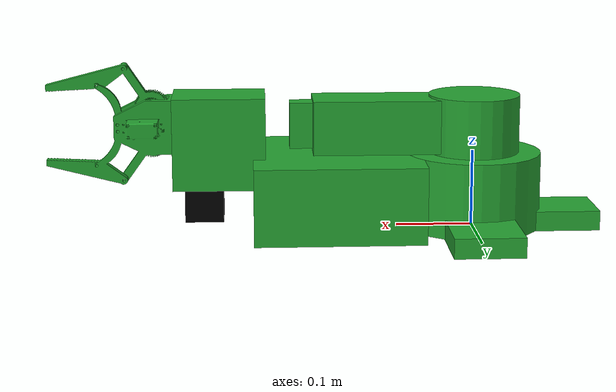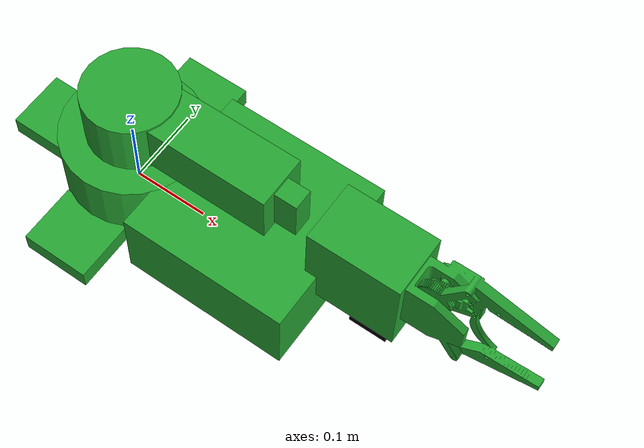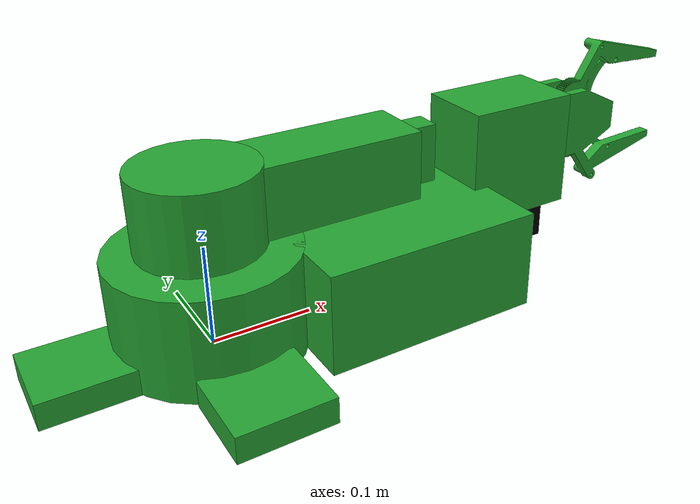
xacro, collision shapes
<?xml version="1.0"?>
<robot xmlns:xacro="http://www.ros.org/wiki/xacro" name="visiona">
    <xacro:arg name="initial_positions_file" default="initial_positions.yaml" />

    <!-- Import visiona urdf file -->
    <xacro:include filename="$(find visiona_bridge)/urdf/visiona.urdf.xacro" />

    <!-- Import control_xacro -->
    <xacro:include filename="visiona.ros2_control.xacro" />

    <xacro:visiona_ros2_control name="FakeSystem" initial_positions_file="$(arg initial_positions_file)"/>

</robot>

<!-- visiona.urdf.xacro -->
<robot xmlns:xacro="http://www.ros.org/wiki/xacro" name="visiona">
    <xacro:arg name="controller_config_path" default="" />
    <xacro:arg name="use_sim" default="true" />
    <xacro:include filename="./gripper.xacro" />
    <link name="world">
    </link>
    <link name="base">
        <inertial>
            <origin xyz="0.0 0.0 0.0" rpy="0.0 0.0 0.0" />
            <mass value="1.0" />
            <inertia ixx="0.01" ixy="0.0" ixz="0.0" iyy="0.01" iyz="0.0" izz="0.01" />
        </inertial>
        <visual name="base">
            <origin xyz="0 0 0 " rpy="0 0 0 " />
            <geometry>
                <mesh filename="file:///home/farouk/ros2_ws/src/visiona_bridge/meshes/base.stl" scale="0.001 0.001 0.001" />
            </geometry>
        </visual>

        <collision name="base_clyinder">
            <origin xyz="0 0 0.05 " rpy="0 0 0 " />
            <geometry>
                <cylinder length="0.1" radius="0.09" />
            </geometry>
        </collision>
        <collision name="logic_box">
            <origin xyz="0.18 0 0.05 " rpy="0 0 0 " />
            <geometry>
                <box size="0.22 0.21 0.1" />
            </geometry>
        </collision>
        <collision name="foot_1">
            <origin xyz="-0.12 0 0.012 " rpy="0 0 0 " />
            <geometry>
                <box size="0.09 0.08 0.026" />
            </geometry>
        </collision>
        <collision name="foot_2">
            <origin xyz="0 -0.12  0.012 " rpy="0 0 0 " />
            <geometry>
                <box size="0.09 0.08 0.026" />
            </geometry>
        </collision>
        <collision name="foot_3">
            <origin xyz="0 0.12  0.012 " rpy="0 0 0 " />
            <geometry>
                <box size="0.09 0.09 0.026" />
            </geometry>
        </collision>
    </link>
    <link name="base_link">
        <inertial>
            <origin xyz="0.0 0.0 0.0" rpy="0.0 0.0 0.0" />
            <mass value="1.0" />
            <inertia ixx="0.01" ixy="0.0" ixz="0.0" iyy="0.01" iyz="0.0" izz="0.01" />
        </inertial>
        <visual name="base_link">
            <origin xyz="0 0 0.075 " rpy="0 0 0 " />
            <geometry>
                <mesh filename="file:///home/farouk/ros2_ws/src/visiona_bridge/meshes/base_link.stl"
                    scale="0.001 0.001 0.001" />
            </geometry>
        </visual>

        <collision>
            <origin xyz="-0.005 0 0.14 " rpy="0 0 0 " />
            <geometry>
                <cylinder length="0.076" radius="0.06" />
            </geometry>
        </collision>
    </link>
    <link name="link_1_shoulder">
        <inertial>
            <origin xyz="0 0 0 " rpy="0.0 0.0 0.0" />
            <mass value="1.0" />
            <inertia ixx="0.01" ixy="0.0" ixz="0.0" iyy="0.01" iyz="0.0" izz="0.01" />
        </inertial>
        <visual name="link_1_shoulder">
            <origin xyz="0 0 0 " rpy="0 0 0 " />
            <geometry>
                <mesh filename="file:///home/farouk/ros2_ws/src/visiona_bridge/meshes/link_1_shoulder.stl"
                    scale="0.001 0.001 0.001" />
            </geometry>

        </visual>

        <collision>
            <origin xyz="-0.002 0 0.13" rpy="0 0 0 " />
            <geometry>
                <box size="0.07 0.07 0.165" />
            </geometry>
        </collision>
    </link>
    <link name="link_2_elbow">
        <inertial>
            <origin xyz="0 0 0 " rpy="0.0 0.0 0.0" />
            <mass value="1.0" />
            <inertia ixx="0.01" ixy="0.0" ixz="0.0" iyy="0.01" iyz="0.0" izz="0.01" />
        </inertial>
        <visual name="link_2_elbow">
            <origin xyz="0 0 0 " rpy="1.57 0 0 " />
            <geometry>
                <mesh filename="file:///home/farouk/ros2_ws/src/visiona_bridge/meshes/link_2_elbow.stl"
                    scale="0.001 0.001 0.001" />
            </geometry>
        </visual>

        <collision>
            <origin xyz="0.0 0.0 0.0" rpy="1.57 0 0 " />
            <geometry>
                <box size="0.027 0.06 0.115" />
            </geometry>
        </collision>
    </link>
    <link name="link_3_wrist">
        <inertial>
            <origin xyz="0 0 0 " rpy="0.0 0.0 0.0" />
            <mass value="1.0" />
            <inertia ixx="0.01" ixy="0.0" ixz="0.0" iyy="0.01" iyz="0.0" izz="0.01" />
        </inertial>
        <visual name="link_3_wrist">
            <origin xyz="0 0.005 0 " rpy="1.57 0 0 " />
            <geometry>
                <mesh filename="file:///home/farouk/ros2_ws/src/visiona_bridge/meshes/link_3_wrist.stl"
                    scale="0.001 0.001 0.001" />
            </geometry>
        </visual>
        <collision>
            <origin xyz="0.0 -0.03 0.02" rpy="1.57 0 0 " />
            <geometry>
                <box size="0.08 0.12 0.12" />
            </geometry>
        </collision>
    </link>

    <joint name="base_joint" type="fixed">
        <origin xyz="0.0 0.0 0.0" rpy="0.0 0.0 0.0" />
        <parent link="world" />
        <child link="base" />
        <axis xyz="0.0 0.0 0.0" />
    </joint>

    <joint name="base_link_joint" type="revolute">
        <origin xyz="0.0 0.0 -0.001" rpy="0.0 0.0 -1.57" />
        <parent link="base" />
        <child link="base_link" />
        <axis xyz="0.0 0 1" />
        <limit lower="0.0" upper="3.14" effort="100.0" velocity="10.0" />

        <dynamics damping="1.0" friction="1.0" />

    </joint>

    <joint name="link_1_shoulder_joint" type="revolute">
        <origin xyz="-0.0055 0 0.14 " rpy="-1.57 0.0 0.0" />
        <parent link="base_link" />
        <child link="link_1_shoulder" />
        <axis xyz="1 0 0.0" />
        <limit lower="0.0" upper="3.14" effort="100.0" velocity="10.0" />
        <dynamics damping="1.0" friction="1.0" />

    </joint>

    <joint name="link_2_elbow_joint" type="revolute">
        <origin xyz="0 0 0.185 " rpy="-1.57 0 0" />
        <parent link="link_1_shoulder" />
        <child link="link_2_elbow" />
        <axis xyz="1 0 0.0" />
        <limit lower="0.0" upper="3.14" effort="100.0" velocity="10.0" />
        <dynamics damping="1.0" friction="1.0" />

    </joint>

    <joint name="link_3_wrist_joint" type="revolute">
        <origin xyz="0 -0.119 0 " rpy="0 0 0" />
        <parent link="link_2_elbow" />
        <child link="link_3_wrist" />
        <axis xyz="1 0 0.0" />
        <limit lower="0.0" upper="3.14" effort="100.0" velocity="10.0" />
        <dynamics damping="1.0" friction="1.0" />

    </joint>

    <xacro:gripper parent_link="link_3_wrist">
        <origin xyz="0 -0.085 0" rpy="3.14 -1.57 0" />

    </xacro:gripper>

    <!-- Camera Link -->
    <link name="camera_link">
        <visual>
            <geometry>
                <box size="0.05 0.05 0.05"/>
            </geometry>
            <material name="black">
                <color rgba="0 0 0 1"/>
            </material>
        </visual>
        <collision>
            <geometry>
                <box size="0.05 0.05 0.05"/>
            </geometry>
        </collision>
    </link>

    <joint name="camera_joint" type="fixed">
        <parent link="link_3_wrist"/>
        <child link="camera_link"/>
        <!-- Adjust origin to place "on top end in the middle" -->
        <!-- Based on link_3_wrist dimensions, placing it slightly offset -->
        <origin xyz="0 -0.05 0.1" rpy="0 0 0"/>
    </joint>

    <link name="camera_depth_frame"/>
    <joint name="camera_depth_joint" type="fixed">
        <parent link="camera_link"/>
        <child link="camera_depth_frame"/>
        <origin xyz="0 0 0" rpy="-1.57 0 -1.57"/>
    </joint>

    <xacro:include filename="visiona_gazebo.xacro" />
    <xacro:include filename="visiona.ros2_control.xacro" />
</robot>

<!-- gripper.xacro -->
<robot xmlns:xacro="http://www.ros.org/wiki/xacro" name="gripper">
    <xacro:macro name="gripper" params="parent_link *origin_block">
        <link name="gripper_base">
            <visual>
                <origin xyz="0 0 0" rpy="0 0 0" />
                <geometry>
                    <mesh filename="file:///home/farouk/ros2_ws/src/visiona_bridge/meshes/gripper_joint.stl"
                        scale="0.001 0.001 0.001" />
                </geometry>
            </visual>
            <collision>
                <origin xyz="0 0 0" rpy="0 0 0" />
                <geometry>
                    <mesh filename="file:///home/farouk/ros2_ws/src/visiona_bridge/meshes/gripper_joint.stl"
                        scale="0.001 0.001 0.001" />
                </geometry>
            </collision>
            <inertial>
                <mass value="0.1" />
                <inertia ixx="0.01" ixy="0" ixz="0" iyy="0.01" iyz="0" izz="0.01" />
            </inertial>
        </link>

        <gazebo>
            <plugin name="mimic_joint_plugin" filename="libgazebo_ros_mimic_joint_plugin.so">
                <joint>gripper</joint>
                <mimicJoint>right_finger_joint</mimicJoint>
                <multiplier>-1.0</multiplier>
                <offset>0.0</offset>
                <maxEffort>100.0</maxEffort>
                <hasPID>false</hasPID>
            </plugin>
        </gazebo>

        <joint name="${parent_link}_to_gripper_base_joint" type="revolute">
            <parent link="${parent_link}" />
            <child link="gripper_base" />
            <xacro:insert_block name="origin_block" />

            <axis xyz="0 1 0.0" />
            <limit lower="-3.0" upper="3.0" effort="100.0" velocity="10.0" />
            <dynamics damping="1.0" friction="1.0" />

        </joint>

        <link name="left_finger_link">
            <visual>
                <origin xyz="0 0 0" rpy="0 0 0" />
                <geometry>
                    <mesh filename="file:///home/farouk/ros2_ws/src/visiona_bridge/meshes/gripper_left_finger.stl"
                        scale="0.001 0.001 0.001" />
                </geometry>
            </visual>
            <collision>
                <origin xyz="0 0 0" rpy="0 0 0" />
                <geometry>
                    <mesh filename="file:///home/farouk/ros2_ws/src/visiona_bridge/meshes/gripper_left_finger.stl"
                        scale="0.001 0.001 0.001" />
                </geometry>
            </collision>
            <inertial>
                <mass value="0.1" />
                <inertia ixx="0.01" ixy="0" ixz="0" iyy="0.01" iyz="0" izz="0.01" />
            </inertial>
        </link>

        <link name="right_finger_link">
            <visual>

                <origin xyz="0 0 0" rpy="0 0 0" />
                <geometry>
                    <mesh filename="file:///home/farouk/ros2_ws/src/visiona_bridge/meshes/gripper_right_finger.stl"
                        scale="0.001 0.001 0.001" />
                </geometry>
            </visual>
            <collision>
                <origin xyz="0 0 0" rpy="0 0 0" />
                <geometry>
                    <mesh filename="file:///home/farouk/ros2_ws/src/visiona_bridge/meshes/gripper_right_finger.stl"
                        scale="0.001 0.001 0.001" />
                </geometry>
            </collision>
            <inertial>
                <mass value="0.1" />
                <inertia ixx="0.01" ixy="0" ixz="0" iyy="0.01" iyz="0" izz="0.01" />
            </inertial>
        </link>

        <joint name="gripper" type="revolute">
            <parent link="gripper_base" />
            <child link="left_finger_link" />
            <origin xyz="0.0 0.0 0" rpy="0 0 0" />
            <axis xyz="0 0 1" />
            <limit lower="-1.0" upper="1" effort="100.0" velocity="10.0" />
            <dynamics damping="0.1" friction="0.1" />

        </joint>

        <joint name="right_finger_joint" type="revolute">
            <parent link="gripper_base" />
            <child link="right_finger_link" />
            <origin xyz="0 0 0" rpy="0 0 0" />
            <axis xyz="0 0 1" />
            <limit lower="-1.0" upper="1" effort="100.0" velocity="10.0" />
            <dynamics damping="0.1" friction="0.1" />
            <mimic joint="gripper" multiplier="-1" offset="0.0" />
        </joint>

    </xacro:macro>

</robot>
